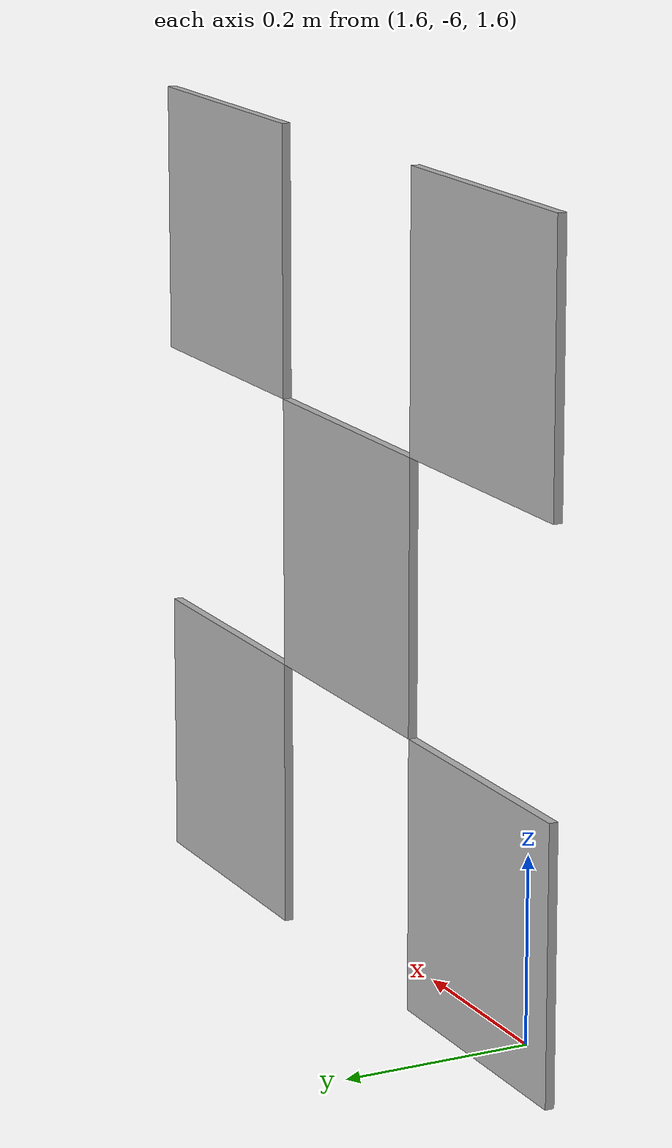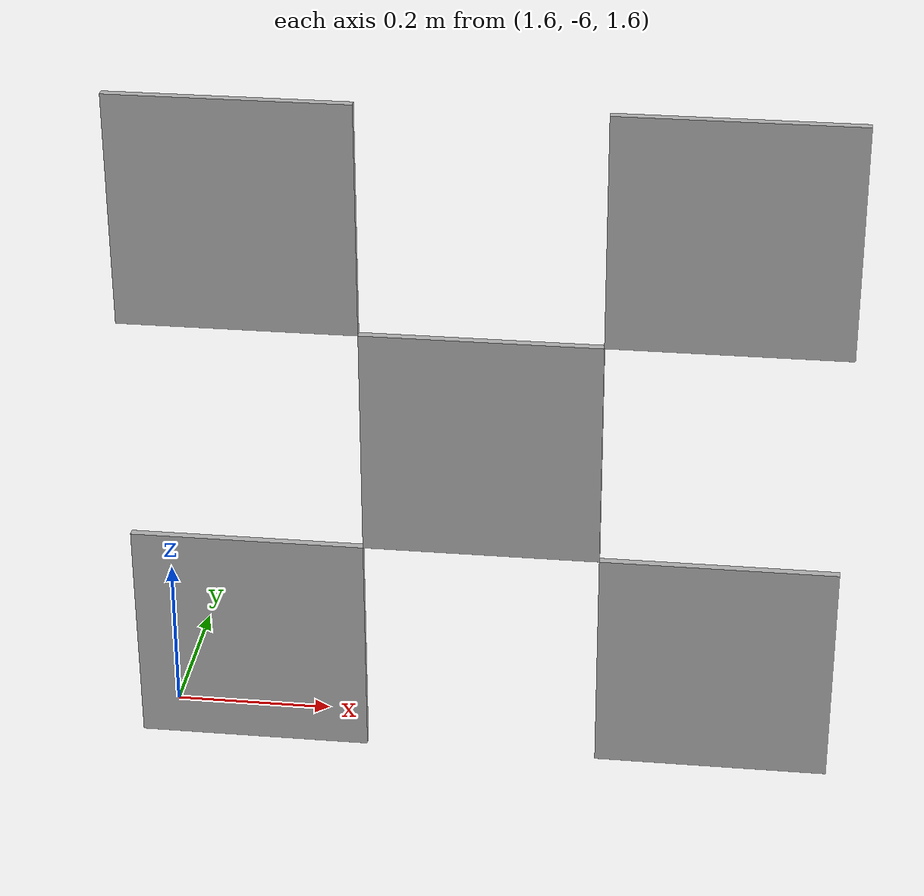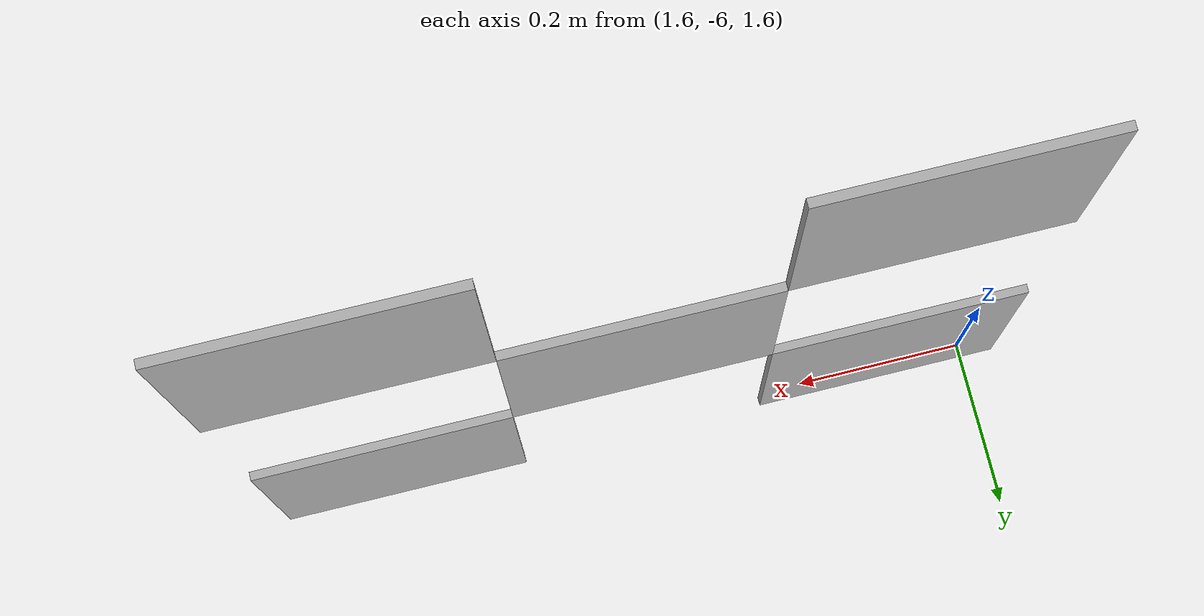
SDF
<?xml version="1.0" ?>
<sdf version="1.4">

	<model name='tag_bundle12'>

		<static>True</static>

		<link name="tag_55">

			<pose>2 -6 2 0 0 -1.5713</pose>

			<inertial>
	        	<mass>0.1</mass>

	        	<inertia>
					<ixx>0.0166667</ixx>
					<ixy>0</ixy>
					<ixz>0</ixz>
					<iyy>0.0166667</iyy>
					<iyz>0</iyz>
					<izz>0.0166667</izz>
        		</inertia>

        		<pose frame=''>0 0 0 0 -0 0</pose>
      		</inertial>

			<pose frame=''>0 0 0 0 -0 0</pose>
			<gravity>1</gravity>
			<self_collide>0</self_collide>
			<kinematic>0</kinematic>
			<enable_wind>0</enable_wind>

			<visual name='visual_55'>
				<pose frame=''>0 0 0 0 -0 0</pose>

		        <geometry>
		        	<box>
		        	<size>0.01 0.3 0.3</size>
		        	</box>
		        </geometry>

		        <material>
		        	<lighting>0</lighting>

		        	<script>
		        		<uri>models://media/materials/scripts/Apriltag.material</uri>
		        		<name>Apriltag/id55</name>
		          	</script>

		        	<shader type='vertex'>
		        		<normal_map>__default__</normal_map>
		          	</shader>

		        	<ambient>0.3 0.3 0.3 1</ambient>
		        	<diffuse>0.7 0.7 0.7 1</diffuse>
		        	<specular>0.01 0.01 0.01 1</specular>
		        	<emissive>0 0 0 1</emissive>
		        </material>

		        <transparency>0</transparency>
		        <cast_shadows>1</cast_shadows>
			</visual>

			<collision name='collision_55'>
				<laser_retro>0</laser_retro>
        		<max_contacts>10</max_contacts>
        		<pose frame=''>0 0 0 0 -0 0</pose>

		        <geometry>
		        	<box>
		        		<size>0.01 0.3 0.3</size>
		        	</box>
		        </geometry>

		        <surface>
		        	<friction>
		            	<ode>
		            		<mu>1</mu>
		            		<mu2>1</mu2>
		            		<fdir1>0 0 0</fdir1>
		            		<slip1>0</slip1>
		            		<slip2>0</slip2>
		            	</ode>

		           		<torsional>
		            		<coefficient>1</coefficient>
	            			<patch_radius>0</patch_radius>
	            			<surface_radius>0</surface_radius>
	            			<use_patch_radius>1</use_patch_radius>

	            			<ode>
		                		<slip>0</slip>
		              		</ode>
		            	</torsional>
		          	</friction>

		        	<bounce>
		            	<restitution_coefficient>0</restitution_coefficient>
		            	<threshold>1e+06</threshold>
		        	</bounce>

		        	<contact>
		            	<collide_without_contact>0</collide_without_contact>
		            	<collide_without_contact_bitmask>1</collide_without_contact_bitmask>
		            	<collide_bitmask>1</collide_bitmask>

		            	<ode>
		            		<soft_cfm>0</soft_cfm>
		            		<soft_erp>0.2</soft_erp>
		            		<kp>1e+13</kp>
		            		<kd>1</kd>
		            		<max_vel>0.01</max_vel>
		            		<min_depth>0</min_depth>
		            	</ode>

			            <bullet>
			            	<split_impulse>1</split_impulse>
			            	<split_impulse_penetration_threshold>-0.01</split_impulse_penetration_threshold>
			            	<soft_cfm>0</soft_cfm>
			            	<soft_erp>0.2</soft_erp>
			            	<kp>1e+13</kp>
			            	<kd>1</kd>
			            </bullet>
		        	</contact>
		        </surface>
		    </collision>
		</link>
 -->
		<link name="tag_56">

			<pose>1.7 -6 2.3 0 0 -1.5713</pose>

			<inertial>
	        	<mass>0.1</mass>

	        	<inertia>
					<ixx>0.0166667</ixx>
					<ixy>0</ixy>
					<ixz>0</ixz>
					<iyy>0.0166667</iyy>
					<iyz>0</iyz>
					<izz>0.0166667</izz>
        		</inertia>

        		<pose frame=''>0 0 0 0 -0 0</pose>
      		</inertial>

			<pose frame=''>0 0 0 0 -0 0</pose>
			<gravity>1</gravity>
			<self_collide>0</self_collide>
			<kinematic>0</kinematic>
			<enable_wind>0</enable_wind>

			<visual name='visual_56'>
				<pose frame=''>0 0 0 0 -0 0</pose>

		        <geometry>
		        	<box>
		        	<size>0.01 0.3 0.3</size>
		        	</box>
		        </geometry>

		        <material>
		        	<lighting>0</lighting>

		        	<script>
		        		<uri>models://media/materials/scripts/Apriltag.material</uri>
		        		<name>Apriltag/id56</name>
		          	</script>

		        	<shader type='vertex'>
		        		<normal_map>__default__</normal_map>
		          	</shader>

		        	<ambient>0.3 0.3 0.3 1</ambient>
		        	<diffuse>0.7 0.7 0.7 1</diffuse>
		        	<specular>0.01 0.01 0.01 1</specular>
		        	<emissive>0 0 0 1</emissive>
		        </material>

		        <transparency>0</transparency>
		        <cast_shadows>1</cast_shadows>
			</visual>

			<collision name='collision_56'>
				<laser_retro>0</laser_retro>
        		<max_contacts>10</max_contacts>
        		<pose frame=''>0 0 0 0 -0 0</pose>

		        <geometry>
		        	<box>
		        		<size>0.01 0.3 0.3</size>
		        	</box>
		        </geometry>

		        <surface>
		        	<friction>
		            	<ode>
		            		<mu>1</mu>
		            		<mu2>1</mu2>
		            		<fdir1>0 0 0</fdir1>
		            		<slip1>0</slip1>
		            		<slip2>0</slip2>
		            	</ode>

		           		<torsional>
		            		<coefficient>1</coefficient>
	            			<patch_radius>0</patch_radius>
	            			<surface_radius>0</surface_radius>
	            			<use_patch_radius>1</use_patch_radius>

	            			<ode>
		                		<slip>0</slip>
		              		</ode>
		            	</torsional>
		          	</friction>

		        	<bounce>
		            	<restitution_coefficient>0</restitution_coefficient>
		            	<threshold>1e+06</threshold>
		        	</bounce>

		        	<contact>
		            	<collide_without_contact>0</collide_without_contact>
		            	<collide_without_contact_bitmask>1</collide_without_contact_bitmask>
		            	<collide_bitmask>1</collide_bitmask>

		            	<ode>
		            		<soft_cfm>0</soft_cfm>
		            		<soft_erp>0.2</soft_erp>
		            		<kp>1e+13</kp>
		            		<kd>1</kd>
		            		<max_vel>0.01</max_vel>
		            		<min_depth>0</min_depth>
		            	</ode>

			            <bullet>
			            	<split_impulse>1</split_impulse>
			            	<split_impulse_penetration_threshold>-0.01</split_impulse_penetration_threshold>
			            	<soft_cfm>0</soft_cfm>
			            	<soft_erp>0.2</soft_erp>
			            	<kp>1e+13</kp>
			            	<kd>1</kd>
			            </bullet>
		        	</contact>
		        </surface>
		    </collision>
		</link>

		<link name="tag_57">

			<pose>2.3 -6 2.3 0 0 -1.5713</pose>

			<inertial>
	        	<mass>0.1</mass>

	        	<inertia>
					<ixx>0.0166667</ixx>
					<ixy>0</ixy>
					<ixz>0</ixz>
					<iyy>0.0166667</iyy>
					<iyz>0</iyz>
					<izz>0.0166667</izz>
        		</inertia>

        		<pose frame=''>0 0 0 0 -0 0</pose>
      		</inertial>

			<pose frame=''>0 0 0 0 -0 0</pose>
			<gravity>1</gravity>
			<self_collide>0</self_collide>
			<kinematic>0</kinematic>
			<enable_wind>0</enable_wind>

			<visual name='visual_57'>
				<pose frame=''>0 0 0 0 -0 0</pose>

		        <geometry>
		        	<box>
		        	<size>0.01 0.3 0.3</size>
		        	</box>
		        </geometry>

		        <material>
		        	<lighting>0</lighting>

		        	<script>
		        		<uri>models://media/materials/scripts/Apriltag.material</uri>
		        		<name>Apriltag/id57</name>
		          	</script>

		        	<shader type='vertex'>
		        		<normal_map>__default__</normal_map>
		          	</shader>

		        	<ambient>0.3 0.3 0.3 1</ambient>
		        	<diffuse>0.7 0.7 0.7 1</diffuse>
		        	<specular>0.01 0.01 0.01 1</specular>
		        	<emissive>0 0 0 1</emissive>
		        </material>

		        <transparency>0</transparency>
		        <cast_shadows>1</cast_shadows>
			</visual>

			<collision name='collision_57'>
				<laser_retro>0</laser_retro>
        		<max_contacts>10</max_contacts>
        		<pose frame=''>0 0 0 0 -0 0</pose>

		        <geometry>
		        	<box>
		        		<size>0.01 0.3 0.3</size>
		        	</box>
		        </geometry>

		        <surface>
		        	<friction>
		            	<ode>
		            		<mu>1</mu>
		            		<mu2>1</mu2>
		            		<fdir1>0 0 0</fdir1>
		            		<slip1>0</slip1>
		            		<slip2>0</slip2>
		            	</ode>

		           		<torsional>
		            		<coefficient>1</coefficient>
	            			<patch_radius>0</patch_radius>
	            			<surface_radius>0</surface_radius>
	            			<use_patch_radius>1</use_patch_radius>

	            			<ode>
		                		<slip>0</slip>
		              		</ode>
		            	</torsional>
		          	</friction>

		        	<bounce>
		            	<restitution_coefficient>0</restitution_coefficient>
		            	<threshold>1e+06</threshold>
		        	</bounce>

		        	<contact>
		            	<collide_without_contact>0</collide_without_contact>
		            	<collide_without_contact_bitmask>1</collide_without_contact_bitmask>
		            	<collide_bitmask>1</collide_bitmask>

		            	<ode>
		            		<soft_cfm>0</soft_cfm>
		            		<soft_erp>0.2</soft_erp>
		            		<kp>1e+13</kp>
		            		<kd>1</kd>
		            		<max_vel>0.01</max_vel>
		            		<min_depth>0</min_depth>
		            	</ode>

			            <bullet>
			            	<split_impulse>1</split_impulse>
			            	<split_impulse_penetration_threshold>-0.01</split_impulse_penetration_threshold>
			            	<soft_cfm>0</soft_cfm>
			            	<soft_erp>0.2</soft_erp>
			            	<kp>1e+13</kp>
			            	<kd>1</kd>
			            </bullet>
		        	</contact>
		        </surface>
		    </collision>
		</link>

		<link name="tag_58">

			<pose>2.3 -6 1.7 0 0 -1.5713</pose>

			<inertial>
	        	<mass>0.1</mass>

	        	<inertia>
					<ixx>0.0166667</ixx>
					<ixy>0</ixy>
					<ixz>0</ixz>
					<iyy>0.0166667</iyy>
					<iyz>0</iyz>
					<izz>0.0166667</izz>
        		</inertia>

        		<pose frame=''>0 0 0 0 -0 0</pose>
      		</inertial>

			<pose frame=''>0 0 0 0 -0 0</pose>
			<gravity>1</gravity>
			<self_collide>0</self_collide>
			<kinematic>0</kinematic>
			<enable_wind>0</enable_wind>

			<visual name='visual_58'>
				<pose frame=''>0 0 0 0 -0 0</pose>

		        <geometry>
		        	<box>
		        	<size>0.01 0.3 0.3</size>
		        	</box>
		        </geometry>

		        <material>
		        	<lighting>0</lighting>

		        	<script>
		        		<uri>models://media/materials/scripts/Apriltag.material</uri>
		        		<name>Apriltag/id58</name>
		          	</script>

		        	<shader type='vertex'>
		        		<normal_map>__default__</normal_map>
		          	</shader>

		        	<ambient>0.3 0.3 0.3 1</ambient>
		        	<diffuse>0.7 0.7 0.7 1</diffuse>
		        	<specular>0.01 0.01 0.01 1</specular>
		        	<emissive>0 0 0 1</emissive>
		        </material>

		        <transparency>0</transparency>
		        <cast_shadows>1</cast_shadows>
			</visual>

			<collision name='collision_58'>
				<laser_retro>0</laser_retro>
        		<max_contacts>10</max_contacts>
        		<pose frame=''>0 0 0 0 -0 0</pose>

		        <geometry>
		        	<box>
		        		<size>0.01 0.3 0.3</size>
		        	</box>
		        </geometry>

		        <surface>
		        	<friction>
		            	<ode>
		            		<mu>1</mu>
		            		<mu2>1</mu2>
		            		<fdir1>0 0 0</fdir1>
		            		<slip1>0</slip1>
		            		<slip2>0</slip2>
		            	</ode>

		           		<torsional>
		            		<coefficient>1</coefficient>
	            			<patch_radius>0</patch_radius>
	            			<surface_radius>0</surface_radius>
	            			<use_patch_radius>1</use_patch_radius>

	            			<ode>
		                		<slip>0</slip>
		              		</ode>
		            	</torsional>
		          	</friction>

		        	<bounce>
		            	<restitution_coefficient>0</restitution_coefficient>
		            	<threshold>1e+06</threshold>
		        	</bounce>

		        	<contact>
		            	<collide_without_contact>0</collide_without_contact>
		            	<collide_without_contact_bitmask>1</collide_without_contact_bitmask>
		            	<collide_bitmask>1</collide_bitmask>

		            	<ode>
		            		<soft_cfm>0</soft_cfm>
		            		<soft_erp>0.2</soft_erp>
		            		<kp>1e+13</kp>
		            		<kd>1</kd>
		            		<max_vel>0.01</max_vel>
		            		<min_depth>0</min_depth>
		            	</ode>

			            <bullet>
			            	<split_impulse>1</split_impulse>
			            	<split_impulse_penetration_threshold>-0.01</split_impulse_penetration_threshold>
			            	<soft_cfm>0</soft_cfm>
			            	<soft_erp>0.2</soft_erp>
			            	<kp>1e+13</kp>
			            	<kd>1</kd>
			            </bullet>
		        	</contact>
		        </surface>
		    </collision>
		</link>

		<link name="tag_59">

			<pose>1.7 -6 1.7 0 0 -1.5713</pose>

			<inertial>
	        	<mass>0.1</mass>

	        	<inertia>
					<ixx>0.0166667</ixx>
					<ixy>0</ixy>
					<ixz>0</ixz>
					<iyy>0.0166667</iyy>
					<iyz>0</iyz>
					<izz>0.0166667</izz>
        		</inertia>

        		<pose frame=''>0 0 0 0 -0 0</pose>
      		</inertial>

			<pose frame=''>0 0 0 0 -0 0</pose>
			<gravity>1</gravity>
			<self_collide>0</self_collide>
			<kinematic>0</kinematic>
			<enable_wind>0</enable_wind>

			<visual name='visual_59'>
				<pose frame=''>0 0 0 0 -0 0</pose>

		        <geometry>
		        	<box>
		        	<size>0.01 0.3 0.3</size>
		        	</box>
		        </geometry>

		        <material>
		        	<lighting>0</lighting>

		        	<script>
		        		<uri>models://media/materials/scripts/Apriltag.material</uri>
		        		<name>Apriltag/id59</name>
		          	</script>

		        	<shader type='vertex'>
		        		<normal_map>__default__</normal_map>
		          	</shader>

		        	<ambient>0.3 0.3 0.3 1</ambient>
		        	<diffuse>0.7 0.7 0.7 1</diffuse>
		        	<specular>0.01 0.01 0.01 1</specular>
		        	<emissive>0 0 0 1</emissive>
		        </material>

		        <transparency>0</transparency>
		        <cast_shadows>1</cast_shadows>
			</visual>

			<collision name='collision_59'>
				<laser_retro>0</laser_retro>
        		<max_contacts>10</max_contacts>
        		<pose frame=''>0 0 0 0 -0 0</pose>

		        <geometry>
		        	<box>
		        		<size>0.01 0.3 0.3</size>
		        	</box>
		        </geometry>

		        <surface>
		        	<friction>
		            	<ode>
		            		<mu>1</mu>
		            		<mu2>1</mu2>
		            		<fdir1>0 0 0</fdir1>
		            		<slip1>0</slip1>
		            		<slip2>0</slip2>
		            	</ode>

		           		<torsional>
		            		<coefficient>1</coefficient>
	            			<patch_radius>0</patch_radius>
	            			<surface_radius>0</surface_radius>
	            			<use_patch_radius>1</use_patch_radius>

	            			<ode>
		                		<slip>0</slip>
		              		</ode>
		            	</torsional>
		          	</friction>

		        	<bounce>
		            	<restitution_coefficient>0</restitution_coefficient>
		            	<threshold>1e+06</threshold>
		        	</bounce>

		        	<contact>
		            	<collide_without_contact>0</collide_without_contact>
		            	<collide_without_contact_bitmask>1</collide_without_contact_bitmask>
		            	<collide_bitmask>1</collide_bitmask>

		            	<ode>
		            		<soft_cfm>0</soft_cfm>
		            		<soft_erp>0.2</soft_erp>
		            		<kp>1e+13</kp>
		            		<kd>1</kd>
		            		<max_vel>0.01</max_vel>
		            		<min_depth>0</min_depth>
		            	</ode>

			            <bullet>
			            	<split_impulse>1</split_impulse>
			            	<split_impulse_penetration_threshold>-0.01</split_impulse_penetration_threshold>
			            	<soft_cfm>0</soft_cfm>
			            	<soft_erp>0.2</soft_erp>
			            	<kp>1e+13</kp>
			            	<kd>1</kd>
			            </bullet>
		        	</contact>
		        </surface>
		    </collision>
		</link>

		<joint name = "joint_1" type="fixed">
			<axis xyz="0 0 0" />
			<parent link="tag_55" />
			<child link="tag_56" />
	    </joint>

	    <joint name = "joint_2" type="fixed">
			<axis xyz="0 0 0" />
			<parent link="tag_55" />
			<child link="tag_57" />
	    </joint>

	    <joint name = "joint_3" type="fixed">
			<axis xyz="0 0 0" />
			<parent link="tag_55" />
			<child link="tag_58" />
	    </joint>

	    <joint name = "joint_4" type="fixed">
			<axis xyz="0 0 0" />
			<parent link="tag_55" />
			<child link="tag_59" />
	    </joint>

	</model>
</sdf>
